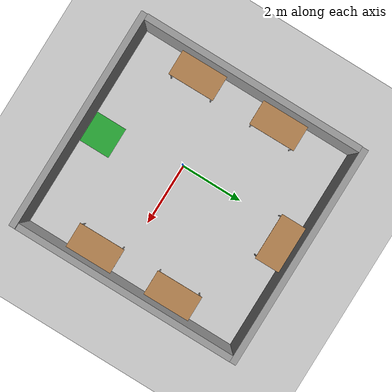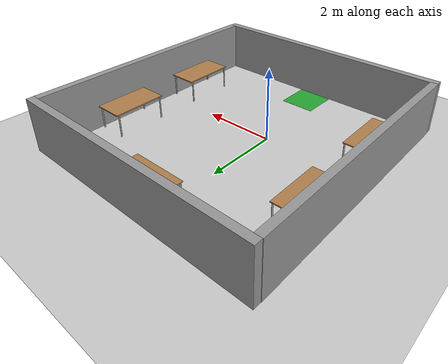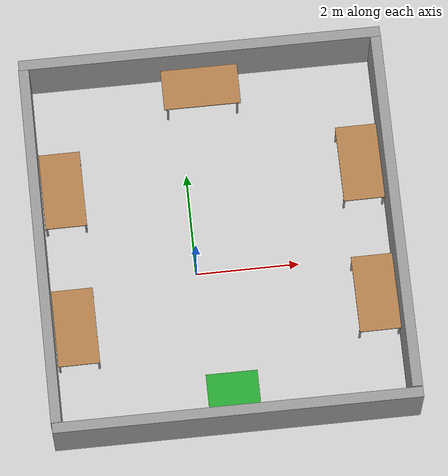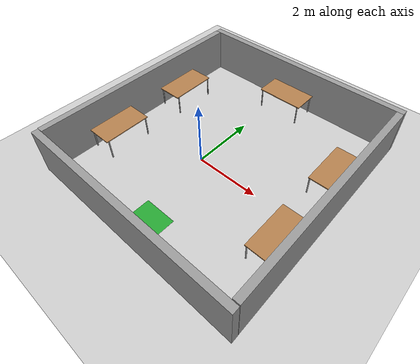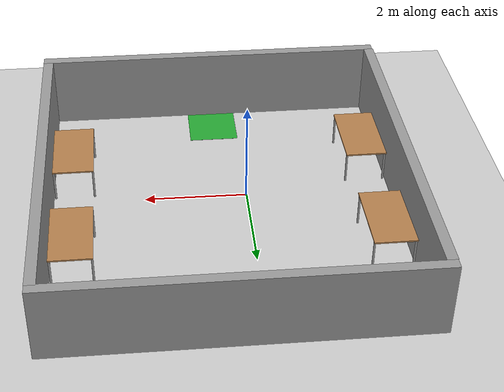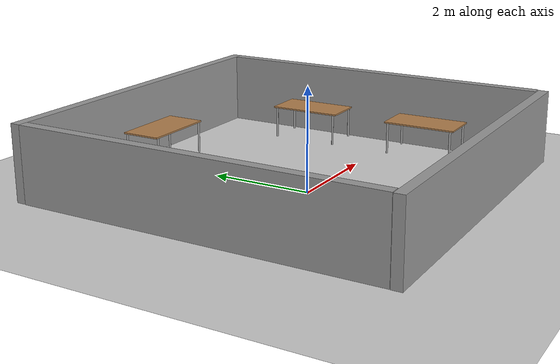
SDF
<sdf version="1.7">
 <world name="default">
  <plugin name="ros_link_attacher_plugin" filename="libgazebo_ros_link_attacher.so"/>
  <model name="ground_plane">
   <static>1</static>
   <link name="link">
    <collision name="collision">
     <geometry><plane><normal>0 0 1</normal><size>100 100</size></plane></geometry>
     <surface>
      <contact><collide_bitmask>65535</collide_bitmask></contact>
      <friction><ode><mu>100</mu><mu2>50</mu2></ode></friction>
     </surface>
    </collision>
    <visual name="visual">
     <cast_shadows>0</cast_shadows>
     <geometry><plane><normal>0 0 1</normal><size>100 100</size></plane></geometry>
     <material>
      <script><uri>file://media/materials/scripts/gazebo.material</uri><name>Gazebo/Grey</name></script>
     </material>
    </visual>
   </link>
  </model>
  <light name="sun" type="directional">
   <pose>0 0 10 0 -0 0</pose>
   <diffuse>0.8 0.8 0.8 1</diffuse>
   <specular>0.2 0.2 0.2 1</specular>
   <attenuation>
    <range>1000</range>
    <constant>0.9</constant>
    <linear>0.01</linear>
    <quadratic>0.001</quadratic>
   </attenuation>
   <direction>-0.5 0.1 -0.9</direction>
   <spot><inner_angle>0</inner_angle><outer_angle>0</outer_angle><falloff>0</falloff></spot>
  </light>
  <gravity>0 0 -9.8</gravity>
  <magnetic_field>6e-06 2.3e-05 -4.2e-05</magnetic_field>
  <atmosphere type="adiabatic"/>
  <physics type="ode">
   <max_step_size>0.001</max_step_size>
   <real_time_factor>1</real_time_factor>
   <real_time_update_rate>1000</real_time_update_rate>
  </physics>
  <scene><ambient>0.4 0.4 0.4 1</ambient><background>0.7 0.7 0.7 1</background><shadows>1</shadows></scene>
  <spherical_coordinates>
   <surface_model>EARTH_WGS84</surface_model>
   <latitude_deg>0</latitude_deg>
   <longitude_deg>0</longitude_deg>
   <elevation>0</elevation>
   <heading_deg>0</heading_deg>
  </spherical_coordinates>
  <model name="table_0_clone">
   <static>1</static>
   <link name="link">
    <collision name="surface">
     <pose>0 0 0.65 0 -0 0</pose>
     <geometry><box><size>1.5 0.8 0.03</size></box></geometry>
     <surface><friction><ode><mu>0.6</mu><mu2>0.6</mu2></ode></friction></surface>
    </collision>
    <visual name="visual1">
     <pose>0 0 0.65 0 -0 0</pose>
     <geometry><box><size>1.5 0.8 0.03</size></box></geometry>
     <material>
      <script><uri>file://media/materials/scripts/gazebo.material</uri><name>Gazebo/Wood</name></script>
     </material>
    </visual>
    <collision name="front_left_leg">
     <pose>0.68 0.38 0.32 0 -0 0</pose>
     <geometry><cylinder><radius>0.02</radius><length>0.65</length></cylinder></geometry>
    </collision>
    <visual name="front_left_leg">
     <pose>0.68 0.38 0.32 0 -0 0</pose>
     <geometry><cylinder><radius>0.02</radius><length>0.65</length></cylinder></geometry>
     <material>
      <script><uri>file://media/materials/scripts/gazebo.material</uri><name>Gazebo/Grey</name></script>
     </material>
    </visual>
    <collision name="front_right_leg">
     <pose>0.68 -0.38 0.32 0 -0 0</pose>
     <geometry><cylinder><radius>0.02</radius><length>0.65</length></cylinder></geometry>
    </collision>
    <visual name="front_right_leg">
     <pose>0.68 -0.38 0.32 0 -0 0</pose>
     <geometry><cylinder><radius>0.02</radius><length>0.65</length></cylinder></geometry>
     <material>
      <script><uri>file://media/materials/scripts/gazebo.material</uri><name>Gazebo/Grey</name></script>
     </material>
    </visual>
    <collision name="back_right_leg">
     <pose>-0.68 -0.38 0.32 0 -0 0</pose>
     <geometry><cylinder><radius>0.02</radius><length>0.65</length></cylinder></geometry>
    </collision>
    <visual name="back_right_leg">
     <pose>-0.68 -0.38 0.32 0 -0 0</pose>
     <geometry><cylinder><radius>0.02</radius><length>0.65</length></cylinder></geometry>
     <material>
      <script><uri>file://media/materials/scripts/gazebo.material</uri><name>Gazebo/Grey</name></script>
     </material>
    </visual>
    <collision name="back_left_leg">
     <pose>-0.68 0.38 0.32 0 -0 0</pose>
     <geometry><cylinder><radius>0.02</radius><length>0.65</length></cylinder></geometry>
    </collision>
    <visual name="back_left_leg">
     <pose>-0.68 0.38 0.32 0 -0 0</pose>
     <geometry><cylinder><radius>0.02</radius><length>0.65</length></cylinder></geometry>
     <material>
      <script><uri>file://media/materials/scripts/gazebo.material</uri><name>Gazebo/Grey</name></script>
     </material>
    </visual>
   </link>
   <pose>0.443345 3.59142 0 0 -0 0</pose>
  </model>
  <model name="table_0_clone_clone">
   <static>1</static>
   <link name="link">
    <collision name="surface">
     <pose>0 0 0.65 0 -0 0</pose>
     <geometry><box><size>1.5 0.8 0.03</size></box></geometry>
     <surface><friction><ode><mu>0.6</mu><mu2>0.6</mu2></ode></friction></surface>
    </collision>
    <visual name="visual1">
     <pose>0 0 0.65 0 -0 0</pose>
     <geometry><box><size>1.5 0.8 0.03</size></box></geometry>
     <material>
      <script><uri>file://media/materials/scripts/gazebo.material</uri><name>Gazebo/Wood</name></script>
     </material>
    </visual>
    <collision name="front_left_leg">
     <pose>0.68 0.38 0.32 0 -0 0</pose>
     <geometry><cylinder><radius>0.02</radius><length>0.65</length></cylinder></geometry>
    </collision>
    <visual name="front_left_leg">
     <pose>0.68 0.38 0.32 0 -0 0</pose>
     <geometry><cylinder><radius>0.02</radius><length>0.65</length></cylinder></geometry>
     <material>
      <script><uri>file://media/materials/scripts/gazebo.material</uri><name>Gazebo/Grey</name></script>
     </material>
    </visual>
    <collision name="front_right_leg">
     <pose>0.68 -0.38 0.32 0 -0 0</pose>
     <geometry><cylinder><radius>0.02</radius><length>0.65</length></cylinder></geometry>
    </collision>
    <visual name="front_right_leg">
     <pose>0.68 -0.38 0.32 0 -0 0</pose>
     <geometry><cylinder><radius>0.02</radius><length>0.65</length></cylinder></geometry>
     <material>
      <script><uri>file://media/materials/scripts/gazebo.material</uri><name>Gazebo/Grey</name></script>
     </material>
    </visual>
    <collision name="back_right_leg">
     <pose>-0.68 -0.38 0.32 0 -0 0</pose>
     <geometry><cylinder><radius>0.02</radius><length>0.65</length></cylinder></geometry>
    </collision>
    <visual name="back_right_leg">
     <pose>-0.68 -0.38 0.32 0 -0 0</pose>
     <geometry><cylinder><radius>0.02</radius><length>0.65</length></cylinder></geometry>
     <material>
      <script><uri>file://media/materials/scripts/gazebo.material</uri><name>Gazebo/Grey</name></script>
     </material>
    </visual>
    <collision name="back_left_leg">
     <pose>-0.68 0.38 0.32 0 -0 0</pose>
     <geometry><cylinder><radius>0.02</radius><length>0.65</length></cylinder></geometry>
    </collision>
    <visual name="back_left_leg">
     <pose>-0.68 0.38 0.32 0 -0 0</pose>
     <geometry><cylinder><radius>0.02</radius><length>0.65</length></cylinder></geometry>
     <material>
      <script><uri>file://media/materials/scripts/gazebo.material</uri><name>Gazebo/Grey</name></script>
     </material>
    </visual>
   </link>
   <pose>-2.42817 -1 0 0 -0 1.57675</pose>
  </model>
  <model name="table_0_clone_clone_clone">
   <static>1</static>
   <link name="link">
    <collision name="surface">
     <pose>0 0 0.65 0 -0 0</pose>
     <geometry><box><size>1.5 0.8 0.03</size></box></geometry>
     <surface><friction><ode><mu>0.6</mu><mu2>0.6</mu2></ode></friction></surface>
    </collision>
    <visual name="visual1">
     <pose>0 0 0.65 0 -0 0</pose>
     <geometry><box><size>1.5 0.8 0.03</size></box></geometry>
     <material>
      <script><uri>file://media/materials/scripts/gazebo.material</uri><name>Gazebo/Wood</name></script>
     </material>
    </visual>
    <collision name="front_left_leg">
     <pose>0.68 0.38 0.32 0 -0 0</pose>
     <geometry><cylinder><radius>0.02</radius><length>0.65</length></cylinder></geometry>
    </collision>
    <visual name="front_left_leg">
     <pose>0.68 0.38 0.32 0 -0 0</pose>
     <geometry><cylinder><radius>0.02</radius><length>0.65</length></cylinder></geometry>
     <material>
      <script><uri>file://media/materials/scripts/gazebo.material</uri><name>Gazebo/Grey</name></script>
     </material>
    </visual>
    <collision name="front_right_leg">
     <pose>0.68 -0.38 0.32 0 -0 0</pose>
     <geometry><cylinder><radius>0.02</radius><length>0.65</length></cylinder></geometry>
    </collision>
    <visual name="front_right_leg">
     <pose>0.68 -0.38 0.32 0 -0 0</pose>
     <geometry><cylinder><radius>0.02</radius><length>0.65</length></cylinder></geometry>
     <material>
      <script><uri>file://media/materials/scripts/gazebo.material</uri><name>Gazebo/Grey</name></script>
     </material>
    </visual>
    <collision name="back_right_leg">
     <pose>-0.68 -0.38 0.32 0 -0 0</pose>
     <geometry><cylinder><radius>0.02</radius><length>0.65</length></cylinder></geometry>
    </collision>
    <visual name="back_right_leg">
     <pose>-0.68 -0.38 0.32 0 -0 0</pose>
     <geometry><cylinder><radius>0.02</radius><length>0.65</length></cylinder></geometry>
     <material>
      <script><uri>file://media/materials/scripts/gazebo.material</uri><name>Gazebo/Grey</name></script>
     </material>
    </visual>
    <collision name="back_left_leg">
     <pose>-0.68 0.38 0.32 0 -0 0</pose>
     <geometry><cylinder><radius>0.02</radius><length>0.65</length></cylinder></geometry>
    </collision>
    <visual name="back_left_leg">
     <pose>-0.68 0.38 0.32 0 -0 0</pose>
     <geometry><cylinder><radius>0.02</radius><length>0.65</length></cylinder></geometry>
     <material>
      <script><uri>file://media/materials/scripts/gazebo.material</uri><name>Gazebo/Grey</name></script>
     </material>
    </visual>
   </link>
   <pose>-2.42573 1.75529 0 0 -0 1.57675</pose>
  </model>
  <model name="table_0_clone_clone_clone_0">
   <static>1</static>
   <link name="link">
    <collision name="surface">
     <pose>0 0 0.65 0 -0 0</pose>
     <geometry><box><size>1.5 0.8 0.03</size></box></geometry>
     <surface><friction><ode><mu>0.6</mu><mu2>0.6</mu2></ode></friction></surface>
    </collision>
    <visual name="visual1">
     <pose>0 0 0.65 0 -0 0</pose>
     <geometry><box><size>1.5 0.8 0.03</size></box></geometry>
     <material>
      <script><uri>file://media/materials/scripts/gazebo.material</uri><name>Gazebo/Wood</name></script>
     </material>
    </visual>
    <collision name="front_left_leg">
     <pose>0.68 0.38 0.32 0 -0 0</pose>
     <geometry><cylinder><radius>0.02</radius><length>0.65</length></cylinder></geometry>
    </collision>
    <visual name="front_left_leg">
     <pose>0.68 0.38 0.32 0 -0 0</pose>
     <geometry><cylinder><radius>0.02</radius><length>0.65</length></cylinder></geometry>
     <material>
      <script><uri>file://media/materials/scripts/gazebo.material</uri><name>Gazebo/Grey</name></script>
     </material>
    </visual>
    <collision name="front_right_leg">
     <pose>0.68 -0.38 0.32 0 -0 0</pose>
     <geometry><cylinder><radius>0.02</radius><length>0.65</length></cylinder></geometry>
    </collision>
    <visual name="front_right_leg">
     <pose>0.68 -0.38 0.32 0 -0 0</pose>
     <geometry><cylinder><radius>0.02</radius><length>0.65</length></cylinder></geometry>
     <material>
      <script><uri>file://media/materials/scripts/gazebo.material</uri><name>Gazebo/Grey</name></script>
     </material>
    </visual>
    <collision name="back_right_leg">
     <pose>-0.68 -0.38 0.32 0 -0 0</pose>
     <geometry><cylinder><radius>0.02</radius><length>0.65</length></cylinder></geometry>
    </collision>
    <visual name="back_right_leg">
     <pose>-0.68 -0.38 0.32 0 -0 0</pose>
     <geometry><cylinder><radius>0.02</radius><length>0.65</length></cylinder></geometry>
     <material>
      <script><uri>file://media/materials/scripts/gazebo.material</uri><name>Gazebo/Grey</name></script>
     </material>
    </visual>
    <collision name="back_left_leg">
     <pose>-0.68 0.38 0.32 0 -0 0</pose>
     <geometry><cylinder><radius>0.02</radius><length>0.65</length></cylinder></geometry>
    </collision>
    <visual name="back_left_leg">
     <pose>-0.68 0.38 0.32 0 -0 0</pose>
     <geometry><cylinder><radius>0.02</radius><length>0.65</length></cylinder></geometry>
     <material>
      <script><uri>file://media/materials/scripts/gazebo.material</uri><name>Gazebo/Grey</name></script>
     </material>
    </visual>
   </link>
   <pose>3.38309 -0.895708 0 0 -0 1.57675</pose>
  </model>
  <model name="table_0_clone_clone_clone_1">
   <static>1</static>
   <link name="link">
    <collision name="surface">
     <pose>0 0 0.65 0 -0 0</pose>
     <geometry><box><size>1.5 0.8 0.03</size></box></geometry>
     <surface><friction><ode><mu>0.6</mu><mu2>0.6</mu2></ode></friction></surface>
    </collision>
    <visual name="visual1">
     <pose>0 0 0.65 0 -0 0</pose>
     <geometry><box><size>1.5 0.8 0.03</size></box></geometry>
     <material>
      <script><uri>file://media/materials/scripts/gazebo.material</uri><name>Gazebo/Wood</name></script>
     </material>
    </visual>
    <collision name="front_left_leg">
     <pose>0.68 0.38 0.32 0 -0 0</pose>
     <geometry><cylinder><radius>0.02</radius><length>0.65</length></cylinder></geometry>
    </collision>
    <visual name="front_left_leg">
     <pose>0.68 0.38 0.32 0 -0 0</pose>
     <geometry><cylinder><radius>0.02</radius><length>0.65</length></cylinder></geometry>
     <material>
      <script><uri>file://media/materials/scripts/gazebo.material</uri><name>Gazebo/Grey</name></script>
     </material>
    </visual>
    <collision name="front_right_leg">
     <pose>0.68 -0.38 0.32 0 -0 0</pose>
     <geometry><cylinder><radius>0.02</radius><length>0.65</length></cylinder></geometry>
    </collision>
    <visual name="front_right_leg">
     <pose>0.68 -0.38 0.32 0 -0 0</pose>
     <geometry><cylinder><radius>0.02</radius><length>0.65</length></cylinder></geometry>
     <material>
      <script><uri>file://media/materials/scripts/gazebo.material</uri><name>Gazebo/Grey</name></script>
     </material>
    </visual>
    <collision name="back_right_leg">
     <pose>-0.68 -0.38 0.32 0 -0 0</pose>
     <geometry><cylinder><radius>0.02</radius><length>0.65</length></cylinder></geometry>
    </collision>
    <visual name="back_right_leg">
     <pose>-0.68 -0.38 0.32 0 -0 0</pose>
     <geometry><cylinder><radius>0.02</radius><length>0.65</length></cylinder></geometry>
     <material>
      <script><uri>file://media/materials/scripts/gazebo.material</uri><name>Gazebo/Grey</name></script>
     </material>
    </visual>
    <collision name="back_left_leg">
     <pose>-0.68 0.38 0.32 0 -0 0</pose>
     <geometry><cylinder><radius>0.02</radius><length>0.65</length></cylinder></geometry>
    </collision>
    <visual name="back_left_leg">
     <pose>-0.68 0.38 0.32 0 -0 0</pose>
     <geometry><cylinder><radius>0.02</radius><length>0.65</length></cylinder></geometry>
     <material>
      <script><uri>file://media/materials/scripts/gazebo.material</uri><name>Gazebo/Grey</name></script>
     </material>
    </visual>
   </link>
   <pose>3.36807 1.74161 0 0 -0 1.57675</pose>
  </model>
  <model name="grey_wall">
   <link name="link">
    <pose>-2.24116 0.206819 1.41112 0 -0 0</pose>
    <inertial>
     <inertia><ixx>0</ixx><ixy>0</ixy><ixz>0</ixz><iyy>0</iyy><iyz>0</iyz><izz>0</izz></inertia>
     <mass>0</mass>
    </inertial>
    <visual name="visual">
     <cast_shadows>0</cast_shadows>
     <geometry><box><size>7.03146 0.2 1.4608</size></box></geometry>
     <material>
      <script>
       <uri>model://grey_wall/materials/scripts</uri>
       <uri>model://grey_wall/materials/textures</uri>
       <name>vrc/grey_wall</name>
      </script>
      <shader type="pixel"/>
     </material>
    </visual>
    <collision name="collision">
     <geometry><box><size>7.03146 0.2 1.4608</size></box></geometry>
     <surface>
      <friction>
       <ode><mu>1</mu><mu2>1</mu2><fdir1>0 0 0</fdir1><slip1>0</slip1><slip2>0</slip2></ode>
       <torsional>
        <coefficient>1</coefficient>
        <patch_radius>0</patch_radius>
        <surface_radius>0</surface_radius>
        <use_patch_radius>1</use_patch_radius>
        <ode><slip>0</slip></ode>
       </torsional>
      </friction>
      <bounce><restitution_coefficient>0</restitution_coefficient><threshold>1e+06</threshold></bounce>
      <contact>
       <collide_without_contact>0</collide_without_contact>
       <collide_without_contact_bitmask>1</collide_without_contact_bitmask>
       <collide_bitmask>1</collide_bitmask>
       <ode>
        <soft_cfm>0</soft_cfm>
        <soft_erp>0.2</soft_erp>
        <kp>1e+13</kp>
        <kd>1</kd>
        <max_vel>0.01</max_vel>
        <min_depth>0</min_depth>
       </ode>
       <bullet>
        <split_impulse>1</split_impulse>
        <split_impulse_penetration_threshold>-0.01</split_impulse_penetration_threshold>
        <soft_cfm>0</soft_cfm>
        <soft_erp>0.2</soft_erp>
        <kp>1e+13</kp>
        <kd>1</kd>
       </bullet>
      </contact>
     </surface>
    </collision>
   </link>
   <static>1</static>
   <pose>2.72123 -3.33408 -0.679079 0 -0 0</pose>
  </model>
  <model name="grey_wall_clone">
   <link name="link">
    <pose>-2.24116 0.206819 1.41112 0 -0 0</pose>
    <inertial>
     <inertia><ixx>0</ixx><ixy>0</ixy><ixz>0</ixz><iyy>0</iyy><iyz>0</iyz><izz>0</izz></inertia>
     <mass>0</mass>
    </inertial>
    <visual name="visual">
     <cast_shadows>0</cast_shadows>
     <geometry><box><size>7.03146 0.2 1.4608</size></box></geometry>
     <material>
      <script>
       <uri>model://grey_wall/materials/scripts</uri>
       <uri>model://grey_wall/materials/textures</uri>
       <name>vrc/grey_wall</name>
      </script>
      <shader type="pixel"/>
     </material>
    </visual>
    <collision name="collision">
     <geometry><box><size>7.03146 0.2 1.4608</size></box></geometry>
     <surface>
      <friction>
       <ode><mu>1</mu><mu2>1</mu2><fdir1>0 0 0</fdir1><slip1>0</slip1><slip2>0</slip2></ode>
       <torsional>
        <coefficient>1</coefficient>
        <patch_radius>0</patch_radius>
        <surface_radius>0</surface_radius>
        <use_patch_radius>1</use_patch_radius>
        <ode><slip>0</slip></ode>
       </torsional>
      </friction>
      <bounce><restitution_coefficient>0</restitution_coefficient><threshold>1e+06</threshold></bounce>
      <contact>
       <collide_without_contact>0</collide_without_contact>
       <collide_without_contact_bitmask>1</collide_without_contact_bitmask>
       <collide_bitmask>1</collide_bitmask>
       <ode>
        <soft_cfm>0</soft_cfm>
        <soft_erp>0.2</soft_erp>
        <kp>1e+13</kp>
        <kd>1</kd>
        <max_vel>0.01</max_vel>
        <min_depth>0</min_depth>
       </ode>
       <bullet>
        <split_impulse>1</split_impulse>
        <split_impulse_penetration_threshold>-0.01</split_impulse_penetration_threshold>
        <soft_cfm>0</soft_cfm>
        <soft_erp>0.2</soft_erp>
        <kp>1e+13</kp>
        <kd>1</kd>
       </bullet>
      </contact>
     </surface>
    </collision>
   </link>
   <static>1</static>
   <pose>2.71641 3.89239 -0.667959 0 -0 0</pose>
  </model>
  <model name="grey_wall_clone_0">
   <link name="link">
    <pose>-2.24116 0.206819 1.41112 0 -0 0</pose>
    <inertial>
     <inertia><ixx>0</ixx><ixy>0</ixy><ixz>0</ixz><iyy>0</iyy><iyz>0</iyz><izz>0</izz></inertia>
     <mass>0</mass>
    </inertial>
    <visual name="visual">
     <cast_shadows>0</cast_shadows>
     <geometry><box><size>7.03146 0.2 1.4608</size></box></geometry>
     <material>
      <script>
       <uri>model://grey_wall/materials/scripts</uri>
       <uri>model://grey_wall/materials/textures</uri>
       <name>vrc/grey_wall</name>
      </script>
      <shader type="pixel"/>
     </material>
    </visual>
    <collision name="collision">
     <geometry><box><size>7.03146 0.2 1.4608</size></box></geometry>
     <surface>
      <friction>
       <ode><mu>1</mu><mu2>1</mu2><fdir1>0 0 0</fdir1><slip1>0</slip1><slip2>0</slip2></ode>
       <torsional>
        <coefficient>1</coefficient>
        <patch_radius>0</patch_radius>
        <surface_radius>0</surface_radius>
        <use_patch_radius>1</use_patch_radius>
        <ode><slip>0</slip></ode>
       </torsional>
      </friction>
      <bounce><restitution_coefficient>0</restitution_coefficient><threshold>1e+06</threshold></bounce>
      <contact>
       <collide_without_contact>0</collide_without_contact>
       <collide_without_contact_bitmask>1</collide_without_contact_bitmask>
       <collide_bitmask>1</collide_bitmask>
       <ode>
        <soft_cfm>0</soft_cfm>
        <soft_erp>0.2</soft_erp>
        <kp>1e+13</kp>
        <kd>1</kd>
        <max_vel>0.01</max_vel>
        <min_depth>0</min_depth>
       </ode>
       <bullet>
        <split_impulse>1</split_impulse>
        <split_impulse_penetration_threshold>-0.01</split_impulse_penetration_threshold>
        <soft_cfm>0</soft_cfm>
        <soft_erp>0.2</soft_erp>
        <kp>1e+13</kp>
        <kd>1</kd>
       </bullet>
      </contact>
     </surface>
    </collision>
   </link>
   <static>1</static>
   <pose>4.10185 2.74431 -0.667959 0 -0 1.57085</pose>
  </model>
  <model name="grey_wall_clone_0_clone">
   <link name="link">
    <pose>-2.24116 0.206819 1.41112 0 -0 0</pose>
    <inertial>
     <inertia><ixx>0</ixx><ixy>0</ixy><ixz>0</ixz><iyy>0</iyy><iyz>0</iyz><izz>0</izz></inertia>
     <mass>0</mass>
    </inertial>
    <visual name="visual">
     <cast_shadows>0</cast_shadows>
     <geometry><box><size>7.03146 0.2 1.4608</size></box></geometry>
     <material>
      <script>
       <uri>model://grey_wall/materials/scripts</uri>
       <uri>model://grey_wall/materials/textures</uri>
       <name>vrc/grey_wall</name>
      </script>
      <shader type="pixel"/>
     </material>
    </visual>
    <collision name="collision">
     <geometry><box><size>7.03146 0.2 1.4608</size></box></geometry>
     <surface>
      <friction>
       <ode><mu>1</mu><mu2>1</mu2><fdir1>0 0 0</fdir1><slip1>0</slip1><slip2>0</slip2></ode>
       <torsional>
        <coefficient>1</coefficient>
        <patch_radius>0</patch_radius>
        <surface_radius>0</surface_radius>
        <use_patch_radius>1</use_patch_radius>
        <ode><slip>0</slip></ode>
       </torsional>
      </friction>
      <bounce><restitution_coefficient>0</restitution_coefficient><threshold>1e+06</threshold></bounce>
      <contact>
       <collide_without_contact>0</collide_without_contact>
       <collide_without_contact_bitmask>1</collide_without_contact_bitmask>
       <collide_bitmask>1</collide_bitmask>
       <ode>
        <soft_cfm>0</soft_cfm>
        <soft_erp>0.2</soft_erp>
        <kp>1e+13</kp>
        <kd>1</kd>
        <max_vel>0.01</max_vel>
        <min_depth>0</min_depth>
       </ode>
       <bullet>
        <split_impulse>1</split_impulse>
        <split_impulse_penetration_threshold>-0.01</split_impulse_penetration_threshold>
        <soft_cfm>0</soft_cfm>
        <soft_erp>0.2</soft_erp>
        <kp>1e+13</kp>
        <kd>1</kd>
       </bullet>
      </contact>
     </surface>
    </collision>
   </link>
   <static>1</static>
   <pose>-2.7442 2.72756 -0.667959 0 -0 1.57085</pose>
  </model>
  <model name="recharge_station">
   <pose>0.47627 -2.5234 1.4e-05 0 -0 0</pose>
   <link name="link">
    <inertial>
     <mass>1</mass>
     <inertia>
      <ixx>0.166667</ixx>
      <ixy>0</ixy>
      <ixz>0</ixz>
      <iyy>0.166667</iyy>
      <iyz>0</iyz>
      <izz>0.166667</izz>
     </inertia>
    </inertial>
    <collision name="collision"><geometry><box><size>1 1 0.002016</size></box></geometry></collision>
    <visual name="visual">
     <geometry><box><size>1 1 0.002016</size></box></geometry>
     <material>
      <script><name>Gazebo/Green</name><uri>file://media/materials/scripts/gazebo.material</uri></script>
     </material>
    </visual>
   </link>
  </model>
 </world>
</sdf>
